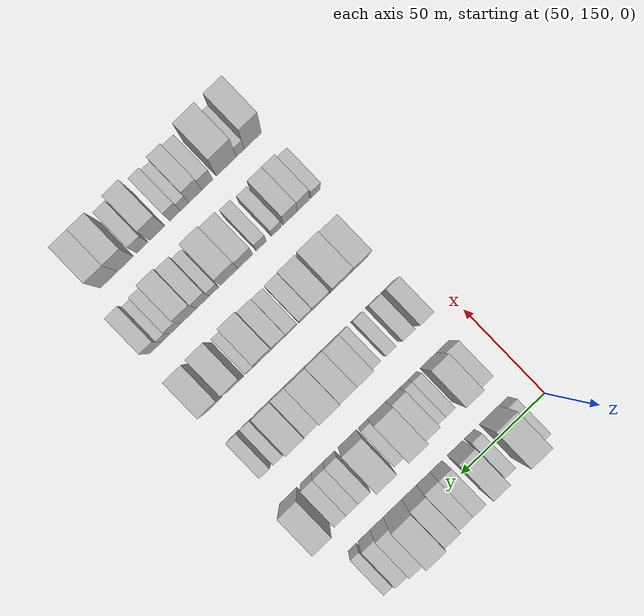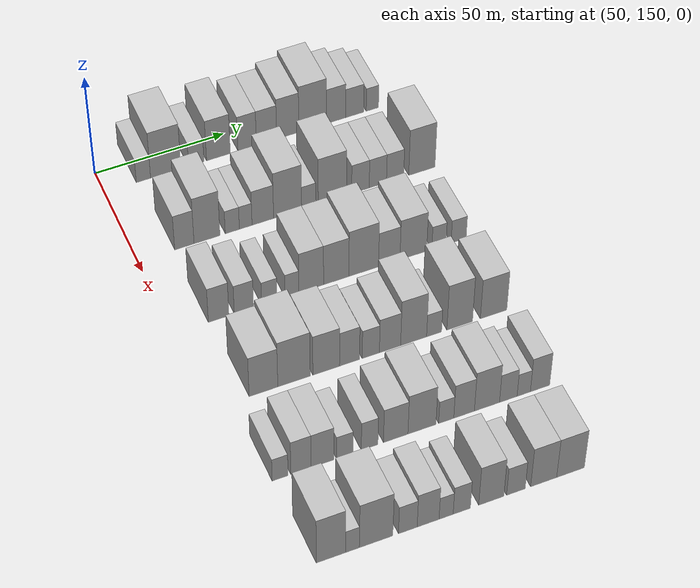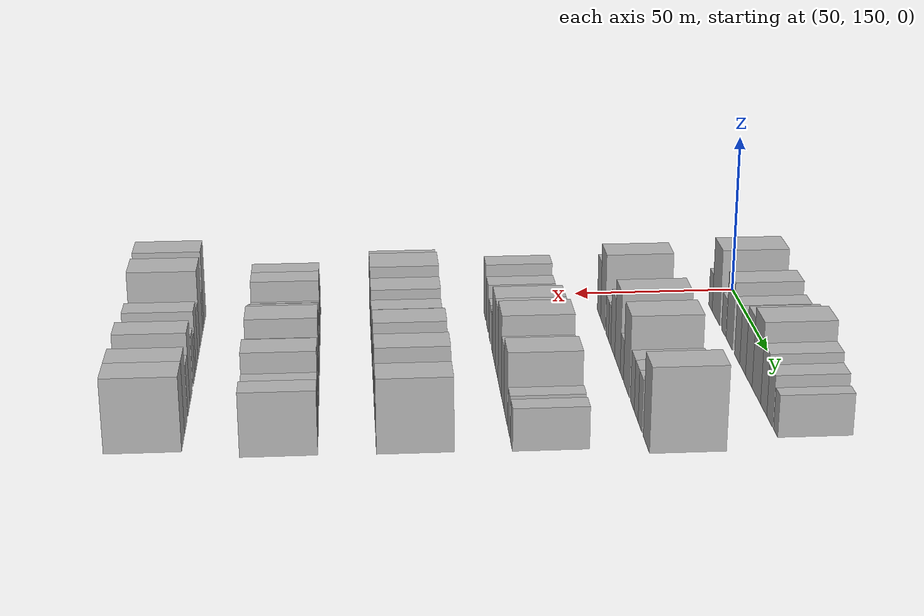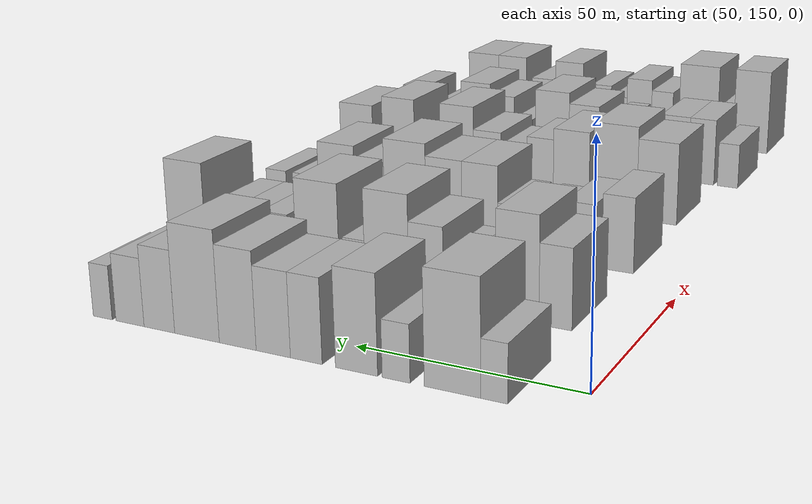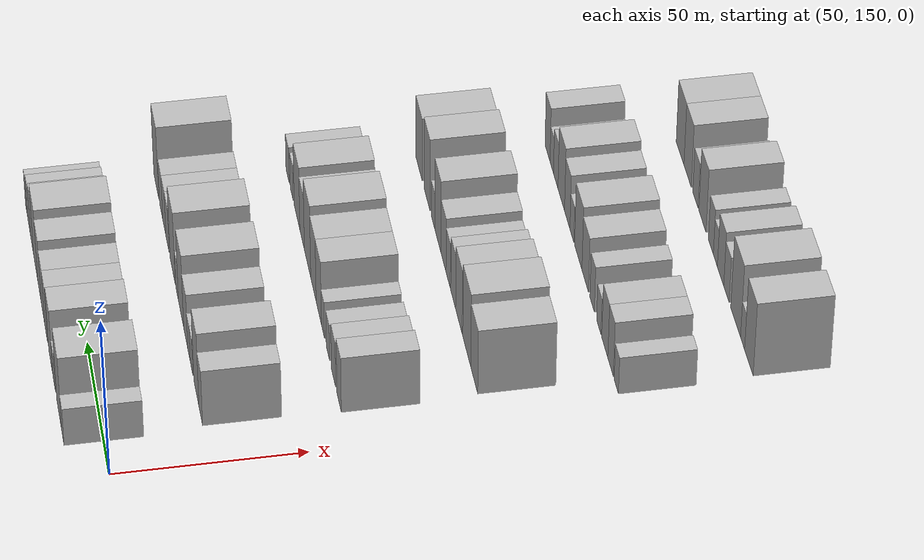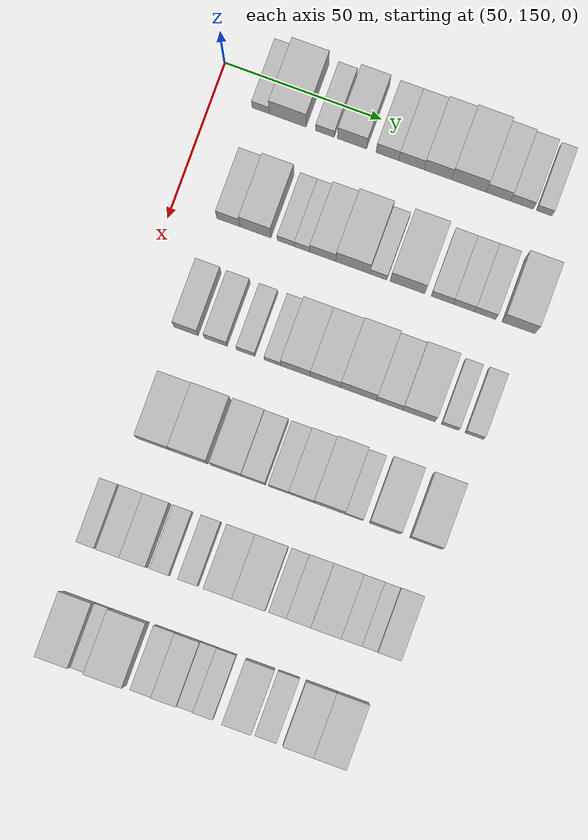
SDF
<sdf version="1.6">
 <world name="default">
  <model name="building_85">
   <static>1</static>
   <pose>50.0000 165.0596 0 0.000000 0.000000 0.000000</pose>
   <link name="link">
    <pose>0 0 6.00 0 0 0</pose>
    <collision name="collision"><geometry><box><size>20.0000 5.4968 12.0000</size></box></geometry></collision>
    <visual name="visual">
     <cast_shadows>0</cast_shadows>
     <geometry><box><size>20.0000 5.4968 12.0000</size></box></geometry>
     <material>
      <script>
       <uri>model://HANNAS_wall/materials/scripts</uri>
       <uri>model://HANNAS_wall/materials/textures</uri>
       <name>vrc/HANNAS_wall</name>
      </script>
     </material>
    </visual>
   </link>
  </model>
  <model name="building_86">
   <static>1</static>
   <pose>50.0000 173.6680 0 0.000000 0.000000 0.000000</pose>
   <link name="link">
    <pose>0 0 12.00 0 0 0</pose>
    <collision name="collision"><geometry><box><size>20.0000 11.7200 24.0000</size></box></geometry></collision>
    <visual name="visual">
     <cast_shadows>0</cast_shadows>
     <geometry><box><size>20.0000 11.7200 24.0000</size></box></geometry>
     <material>
      <script>
       <uri>model://HANNAS_wall/materials/scripts</uri>
       <uri>model://HANNAS_wall/materials/textures</uri>
       <name>vrc/HANNAS_wall</name>
      </script>
     </material>
    </visual>
   </link>
  </model>
  <model name="building_87">
   <static>1</static>
   <pose>50.0000 185.5181 0 0.000000 0.000000 0.000000</pose>
   <link name="link">
    <pose>0 0 6.00 0 0 0</pose>
    <collision name="collision"><geometry><box><size>20.0000 5.9802 12.0000</size></box></geometry></collision>
    <visual name="visual">
     <cast_shadows>0</cast_shadows>
     <geometry><box><size>20.0000 5.9802 12.0000</size></box></geometry>
     <material>
      <script>
       <uri>model://HANNAS_wall/materials/scripts</uri>
       <uri>model://HANNAS_wall/materials/textures</uri>
       <name>vrc/HANNAS_wall</name>
      </script>
     </material>
    </visual>
   </link>
  </model>
  <model name="building_88">
   <static>1</static>
   <pose>50.0000 194.1601 0 0.000000 0.000000 0.000000</pose>
   <link name="link">
    <pose>0 0 10.50 0 0 0</pose>
    <collision name="collision"><geometry><box><size>20.0000 9.3038 21.0000</size></box></geometry></collision>
    <visual name="visual">
     <cast_shadows>0</cast_shadows>
     <geometry><box><size>20.0000 9.3038 21.0000</size></box></geometry>
     <material>
      <script>
       <uri>model://HANNAS_wall/materials/scripts</uri>
       <uri>model://HANNAS_wall/materials/textures</uri>
       <name>vrc/HANNAS_wall</name>
      </script>
     </material>
    </visual>
   </link>
  </model>
  <model name="building_89">
   <static>1</static>
   <pose>50.0000 205.4317 0 0.000000 0.000000 0.000000</pose>
   <link name="link">
    <pose>0 0 9.00 0 0 0</pose>
    <collision name="collision"><geometry><box><size>20.0000 7.2393 18.0000</size></box></geometry></collision>
    <visual name="visual">
     <cast_shadows>0</cast_shadows>
     <geometry><box><size>20.0000 7.2393 18.0000</size></box></geometry>
     <material>
      <script>
       <uri>model://HANNAS_wall/materials/scripts</uri>
       <uri>model://HANNAS_wall/materials/textures</uri>
       <name>vrc/HANNAS_wall</name>
      </script>
     </material>
    </visual>
   </link>
  </model>
  <model name="building_90">
   <static>1</static>
   <pose>50.0000 213.0510 0 0.000000 0.000000 0.000000</pose>
   <link name="link">
    <pose>0 0 9.00 0 0 0</pose>
    <collision name="collision"><geometry><box><size>20.0000 7.9992 18.0000</size></box></geometry></collision>
    <visual name="visual">
     <cast_shadows>0</cast_shadows>
     <geometry><box><size>20.0000 7.9992 18.0000</size></box></geometry>
     <material>
      <script>
       <uri>model://HANNAS_wall/materials/scripts</uri>
       <uri>model://HANNAS_wall/materials/textures</uri>
       <name>vrc/HANNAS_wall</name>
      </script>
     </material>
    </visual>
   </link>
  </model>
  <model name="building_91">
   <static>1</static>
   <pose>50.0000 221.4520 0 0.000000 0.000000 0.000000</pose>
   <link name="link">
    <pose>0 0 10.50 0 0 0</pose>
    <collision name="collision"><geometry><box><size>20.0000 8.8029 21.0000</size></box></geometry></collision>
    <visual name="visual">
     <cast_shadows>0</cast_shadows>
     <geometry><box><size>20.0000 8.8029 21.0000</size></box></geometry>
     <material>
      <script>
       <uri>model://HANNAS_wall/materials/scripts</uri>
       <uri>model://HANNAS_wall/materials/textures</uri>
       <name>vrc/HANNAS_wall</name>
      </script>
     </material>
    </visual>
   </link>
  </model>
  <model name="building_92">
   <static>1</static>
   <pose>50.0000 231.3455 0 0.000000 0.000000 0.000000</pose>
   <link name="link">
    <pose>0 0 12.00 0 0 0</pose>
    <collision name="collision"><geometry><box><size>20.0000 10.9840 24.0000</size></box></geometry></collision>
    <visual name="visual">
     <cast_shadows>0</cast_shadows>
     <geometry><box><size>20.0000 10.9840 24.0000</size></box></geometry>
     <material>
      <script>
       <uri>model://HANNAS_wall/materials/scripts</uri>
       <uri>model://HANNAS_wall/materials/textures</uri>
       <name>vrc/HANNAS_wall</name>
      </script>
     </material>
    </visual>
   </link>
  </model>
  <model name="building_93">
   <static>1</static>
   <pose>50.0000 240.7117 0 0.000000 0.000000 0.000000</pose>
   <link name="link">
    <pose>0 0 9.00 0 0 0</pose>
    <collision name="collision"><geometry><box><size>20.0000 7.7483 18.0000</size></box></geometry></collision>
    <visual name="visual">
     <cast_shadows>0</cast_shadows>
     <geometry><box><size>20.0000 7.7483 18.0000</size></box></geometry>
     <material>
      <script>
       <uri>model://HANNAS_wall/materials/scripts</uri>
       <uri>model://HANNAS_wall/materials/textures</uri>
       <name>vrc/HANNAS_wall</name>
      </script>
     </material>
    </visual>
   </link>
  </model>
  <model name="building_94">
   <static>1</static>
   <pose>50.0000 248.2094 0 0.000000 0.000000 0.000000</pose>
   <link name="link">
    <pose>0 0 7.50 0 0 0</pose>
    <collision name="collision"><geometry><box><size>20.0000 7.2471 15.0000</size></box></geometry></collision>
    <visual name="visual">
     <cast_shadows>0</cast_shadows>
     <geometry><box><size>20.0000 7.2471 15.0000</size></box></geometry>
     <material>
      <script>
       <uri>model://HANNAS_wall/materials/scripts</uri>
       <uri>model://HANNAS_wall/materials/textures</uri>
       <name>vrc/HANNAS_wall</name>
      </script>
     </material>
    </visual>
   </link>
  </model>
  <model name="building_95">
   <static>1</static>
   <pose>50.0000 255.3101 0 0.000000 0.000000 0.000000</pose>
   <link name="link">
    <pose>0 0 6.00 0 0 0</pose>
    <collision name="collision"><geometry><box><size>20.0000 4.9544 12.0000</size></box></geometry></collision>
    <visual name="visual">
     <cast_shadows>0</cast_shadows>
     <geometry><box><size>20.0000 4.9544 12.0000</size></box></geometry>
     <material>
      <script>
       <uri>model://HANNAS_wall/materials/scripts</uri>
       <uri>model://HANNAS_wall/materials/textures</uri>
       <name>vrc/HANNAS_wall</name>
      </script>
     </material>
    </visual>
   </link>
  </model>
  <model name="building_211">
   <static>1</static>
   <pose>85.0000 167.6318 0 0.000000 0.000000 0.000000</pose>
   <link name="link">
    <pose>0 0 9.00 0 0 0</pose>
    <collision name="collision"><geometry><box><size>20.0000 7.3323 18.0000</size></box></geometry></collision>
    <visual name="visual">
     <cast_shadows>0</cast_shadows>
     <geometry><box><size>20.0000 7.3323 18.0000</size></box></geometry>
     <material>
      <script>
       <uri>model://HANNAS_wall/materials/scripts</uri>
       <uri>model://HANNAS_wall/materials/textures</uri>
       <name>vrc/HANNAS_wall</name>
      </script>
     </material>
    </visual>
   </link>
  </model>
  <model name="building_212">
   <static>1</static>
   <pose>85.0000 176.2256 0 0.000000 0.000000 0.000000</pose>
   <link name="link">
    <pose>0 0 12.00 0 0 0</pose>
    <collision name="collision"><geometry><box><size>20.0000 9.8552 24.0000</size></box></geometry></collision>
    <visual name="visual">
     <cast_shadows>0</cast_shadows>
     <geometry><box><size>20.0000 9.8552 24.0000</size></box></geometry>
     <material>
      <script>
       <uri>model://HANNAS_wall/materials/scripts</uri>
       <uri>model://HANNAS_wall/materials/textures</uri>
       <name>vrc/HANNAS_wall</name>
      </script>
     </material>
    </visual>
   </link>
  </model>
  <model name="building_213">
   <static>1</static>
   <pose>85.0000 185.8575 0 0.000000 0.000000 0.000000</pose>
   <link name="link">
    <pose>0 0 6.00 0 0 0</pose>
    <collision name="collision"><geometry><box><size>20.0000 5.4086 12.0000</size></box></geometry></collision>
    <visual name="visual">
     <cast_shadows>0</cast_shadows>
     <geometry><box><size>20.0000 5.4086 12.0000</size></box></geometry>
     <material>
      <script>
       <uri>model://HANNAS_wall/materials/scripts</uri>
       <uri>model://HANNAS_wall/materials/textures</uri>
       <name>vrc/HANNAS_wall</name>
      </script>
     </material>
    </visual>
   </link>
  </model>
  <model name="building_214">
   <static>1</static>
   <pose>85.0000 190.9847 0 0.000000 0.000000 0.000000</pose>
   <link name="link">
    <pose>0 0 6.00 0 0 0</pose>
    <collision name="collision"><geometry><box><size>20.0000 4.8459 12.0000</size></box></geometry></collision>
    <visual name="visual">
     <cast_shadows>0</cast_shadows>
     <geometry><box><size>20.0000 4.8459 12.0000</size></box></geometry>
     <material>
      <script>
       <uri>model://HANNAS_wall/materials/scripts</uri>
       <uri>model://HANNAS_wall/materials/textures</uri>
       <name>vrc/HANNAS_wall</name>
      </script>
     </material>
    </visual>
   </link>
  </model>
  <model name="building_215">
   <static>1</static>
   <pose>85.0000 197.5576 0 0.000000 0.000000 0.000000</pose>
   <link name="link">
    <pose>0 0 9.00 0 0 0</pose>
    <collision name="collision"><geometry><box><size>20.0000 8.3000 18.0000</size></box></geometry></collision>
    <visual name="visual">
     <cast_shadows>0</cast_shadows>
     <geometry><box><size>20.0000 8.3000 18.0000</size></box></geometry>
     <material>
      <script>
       <uri>model://HANNAS_wall/materials/scripts</uri>
       <uri>model://HANNAS_wall/materials/textures</uri>
       <name>vrc/HANNAS_wall</name>
      </script>
     </material>
    </visual>
   </link>
  </model>
  <model name="building_216">
   <static>1</static>
   <pose>85.0000 207.1209 0 0.000000 0.000000 0.000000</pose>
   <link name="link">
    <pose>0 0 12.00 0 0 0</pose>
    <collision name="collision"><geometry><box><size>20.0000 10.8265 24.0000</size></box></geometry></collision>
    <visual name="visual">
     <cast_shadows>0</cast_shadows>
     <geometry><box><size>20.0000 10.8265 24.0000</size></box></geometry>
     <material>
      <script>
       <uri>model://HANNAS_wall/materials/scripts</uri>
       <uri>model://HANNAS_wall/materials/textures</uri>
       <name>vrc/HANNAS_wall</name>
      </script>
     </material>
    </visual>
   </link>
  </model>
  <model name="building_217">
   <static>1</static>
   <pose>85.0000 215.2522 0 0.000000 0.000000 0.000000</pose>
   <link name="link">
    <pose>0 0 6.00 0 0 0</pose>
    <collision name="collision"><geometry><box><size>20.0000 5.4363 12.0000</size></box></geometry></collision>
    <visual name="visual">
     <cast_shadows>0</cast_shadows>
     <geometry><box><size>20.0000 5.4363 12.0000</size></box></geometry>
     <material>
      <script>
       <uri>model://HANNAS_wall/materials/scripts</uri>
       <uri>model://HANNAS_wall/materials/textures</uri>
       <name>vrc/HANNAS_wall</name>
      </script>
     </material>
    </visual>
   </link>
  </model>
  <model name="building_218">
   <static>1</static>
   <pose>85.0000 224.4959 0 0.000000 0.000000 0.000000</pose>
   <link name="link">
    <pose>0 0 12.00 0 0 0</pose>
    <collision name="collision"><geometry><box><size>20.0000 11.0511 24.0000</size></box></geometry></collision>
    <visual name="visual">
     <cast_shadows>0</cast_shadows>
     <geometry><box><size>20.0000 11.0511 24.0000</size></box></geometry>
     <material>
      <script>
       <uri>model://HANNAS_wall/materials/scripts</uri>
       <uri>model://HANNAS_wall/materials/textures</uri>
       <name>vrc/HANNAS_wall</name>
      </script>
     </material>
    </visual>
   </link>
  </model>
  <model name="building_219">
   <static>1</static>
   <pose>85.0000 235.4672 0 0.000000 0.000000 0.000000</pose>
   <link name="link">
    <pose>0 0 7.50 0 0 0</pose>
    <collision name="collision"><geometry><box><size>20.0000 6.8915 15.0000</size></box></geometry></collision>
    <visual name="visual">
     <cast_shadows>0</cast_shadows>
     <geometry><box><size>20.0000 6.8915 15.0000</size></box></geometry>
     <material>
      <script>
       <uri>model://HANNAS_wall/materials/scripts</uri>
       <uri>model://HANNAS_wall/materials/textures</uri>
       <name>vrc/HANNAS_wall</name>
      </script>
     </material>
    </visual>
   </link>
  </model>
  <model name="building_220">
   <static>1</static>
   <pose>85.0000 242.3127 0 0.000000 0.000000 0.000000</pose>
   <link name="link">
    <pose>0 0 7.50 0 0 0</pose>
    <collision name="collision"><geometry><box><size>20.0000 6.7995 15.0000</size></box></geometry></collision>
    <visual name="visual">
     <cast_shadows>0</cast_shadows>
     <geometry><box><size>20.0000 6.7995 15.0000</size></box></geometry>
     <material>
      <script>
       <uri>model://HANNAS_wall/materials/scripts</uri>
       <uri>model://HANNAS_wall/materials/textures</uri>
       <name>vrc/HANNAS_wall</name>
      </script>
     </material>
    </visual>
   </link>
  </model>
  <model name="building_221">
   <static>1</static>
   <pose>85.0000 249.1140 0 0.000000 0.000000 0.000000</pose>
   <link name="link">
    <pose>0 0 7.50 0 0 0</pose>
    <collision name="collision"><geometry><box><size>20.0000 6.8031 15.0000</size></box></geometry></collision>
    <visual name="visual">
     <cast_shadows>0</cast_shadows>
     <geometry><box><size>20.0000 6.8031 15.0000</size></box></geometry>
     <material>
      <script>
       <uri>model://HANNAS_wall/materials/scripts</uri>
       <uri>model://HANNAS_wall/materials/textures</uri>
       <name>vrc/HANNAS_wall</name>
      </script>
     </material>
    </visual>
   </link>
  </model>
  <model name="building_222">
   <static>1</static>
   <pose>85.0000 259.7297 0 0.000000 0.000000 0.000000</pose>
   <link name="link">
    <pose>0 0 12.00 0 0 0</pose>
    <collision name="collision"><geometry><box><size>20.0000 10.4284 24.0000</size></box></geometry></collision>
    <visual name="visual">
     <cast_shadows>0</cast_shadows>
     <geometry><box><size>20.0000 10.4284 24.0000</size></box></geometry>
     <material>
      <script>
       <uri>model://HANNAS_wall/materials/scripts</uri>
       <uri>model://HANNAS_wall/materials/textures</uri>
       <name>vrc/HANNAS_wall</name>
      </script>
     </material>
    </visual>
   </link>
  </model>
  <model name="building_331">
   <static>1</static>
   <pose>120.0000 167.0489 0 0.000000 0.000000 0.000000</pose>
   <link name="link">
    <pose>0 0 9.00 0 0 0</pose>
    <collision name="collision"><geometry><box><size>20.0000 7.6300 18.0000</size></box></geometry></collision>
    <visual name="visual">
     <cast_shadows>0</cast_shadows>
     <geometry><box><size>20.0000 7.6300 18.0000</size></box></geometry>
     <material>
      <script>
       <uri>model://HANNAS_wall/materials/scripts</uri>
       <uri>model://HANNAS_wall/materials/textures</uri>
       <name>vrc/HANNAS_wall</name>
      </script>
     </material>
    </visual>
   </link>
  </model>
  <model name="building_332">
   <static>1</static>
   <pose>120.0000 176.4582 0 0.000000 0.000000 0.000000</pose>
   <link name="link">
    <pose>0 0 7.50 0 0 0</pose>
    <collision name="collision"><geometry><box><size>20.0000 7.1886 15.0000</size></box></geometry></collision>
    <visual name="visual">
     <cast_shadows>0</cast_shadows>
     <geometry><box><size>20.0000 7.1886 15.0000</size></box></geometry>
     <material>
      <script>
       <uri>model://HANNAS_wall/materials/scripts</uri>
       <uri>model://HANNAS_wall/materials/textures</uri>
       <name>vrc/HANNAS_wall</name>
      </script>
     </material>
    </visual>
   </link>
  </model>
  <model name="building_333">
   <static>1</static>
   <pose>120.0000 185.9573 0 0.000000 0.000000 0.000000</pose>
   <link name="link">
    <pose>0 0 6.00 0 0 0</pose>
    <collision name="collision"><geometry><box><size>20.0000 5.8095 12.0000</size></box></geometry></collision>
    <visual name="visual">
     <cast_shadows>0</cast_shadows>
     <geometry><box><size>20.0000 5.8095 12.0000</size></box></geometry>
     <material>
      <script>
       <uri>model://HANNAS_wall/materials/scripts</uri>
       <uri>model://HANNAS_wall/materials/textures</uri>
       <name>vrc/HANNAS_wall</name>
      </script>
     </material>
    </visual>
   </link>
  </model>
  <model name="building_334">
   <static>1</static>
   <pose>120.0000 194.4682 0 0.000000 0.000000 0.000000</pose>
   <link name="link">
    <pose>0 0 6.00 0 0 0</pose>
    <collision name="collision"><geometry><box><size>20.0000 5.2124 12.0000</size></box></geometry></collision>
    <visual name="visual">
     <cast_shadows>0</cast_shadows>
     <geometry><box><size>20.0000 5.2124 12.0000</size></box></geometry>
     <material>
      <script>
       <uri>model://HANNAS_wall/materials/scripts</uri>
       <uri>model://HANNAS_wall/materials/textures</uri>
       <name>vrc/HANNAS_wall</name>
      </script>
     </material>
    </visual>
   </link>
  </model>
  <model name="building_335">
   <static>1</static>
   <pose>120.0000 201.7313 0 0.000000 0.000000 0.000000</pose>
   <link name="link">
    <pose>0 0 10.50 0 0 0</pose>
    <collision name="collision"><geometry><box><size>20.0000 9.3136 21.0000</size></box></geometry></collision>
    <visual name="visual">
     <cast_shadows>0</cast_shadows>
     <geometry><box><size>20.0000 9.3136 21.0000</size></box></geometry>
     <material>
      <script>
       <uri>model://HANNAS_wall/materials/scripts</uri>
       <uri>model://HANNAS_wall/materials/textures</uri>
       <name>vrc/HANNAS_wall</name>
      </script>
     </material>
    </visual>
   </link>
  </model>
  <model name="building_336">
   <static>1</static>
   <pose>120.0000 211.1933 0 0.000000 0.000000 0.000000</pose>
   <link name="link">
    <pose>0 0 10.50 0 0 0</pose>
    <collision name="collision"><geometry><box><size>20.0000 9.6106 21.0000</size></box></geometry></collision>
    <visual name="visual">
     <cast_shadows>0</cast_shadows>
     <geometry><box><size>20.0000 9.6106 21.0000</size></box></geometry>
     <material>
      <script>
       <uri>model://HANNAS_wall/materials/scripts</uri>
       <uri>model://HANNAS_wall/materials/textures</uri>
       <name>vrc/HANNAS_wall</name>
      </script>
     </material>
    </visual>
   </link>
  </model>
  <model name="building_337">
   <static>1</static>
   <pose>120.0000 221.6790 0 0.000000 0.000000 0.000000</pose>
   <link name="link">
    <pose>0 0 12.00 0 0 0</pose>
    <collision name="collision"><geometry><box><size>20.0000 11.3607 24.0000</size></box></geometry></collision>
    <visual name="visual">
     <cast_shadows>0</cast_shadows>
     <geometry><box><size>20.0000 11.3607 24.0000</size></box></geometry>
     <material>
      <script>
       <uri>model://HANNAS_wall/materials/scripts</uri>
       <uri>model://HANNAS_wall/materials/textures</uri>
       <name>vrc/HANNAS_wall</name>
      </script>
     </material>
    </visual>
   </link>
  </model>
  <model name="building_338">
   <static>1</static>
   <pose>120.0000 231.4767 0 0.000000 0.000000 0.000000</pose>
   <link name="link">
    <pose>0 0 9.00 0 0 0</pose>
    <collision name="collision"><geometry><box><size>20.0000 8.2347 18.0000</size></box></geometry></collision>
    <visual name="visual">
     <cast_shadows>0</cast_shadows>
     <geometry><box><size>20.0000 8.2347 18.0000</size></box></geometry>
     <material>
      <script>
       <uri>model://HANNAS_wall/materials/scripts</uri>
       <uri>model://HANNAS_wall/materials/textures</uri>
       <name>vrc/HANNAS_wall</name>
      </script>
     </material>
    </visual>
   </link>
  </model>
  <model name="building_339">
   <static>1</static>
   <pose>120.0000 240.7613 0 0.000000 0.000000 0.000000</pose>
   <link name="link">
    <pose>0 0 10.50 0 0 0</pose>
    <collision name="collision"><geometry><box><size>20.0000 10.3345 21.0000</size></box></geometry></collision>
    <visual name="visual">
     <cast_shadows>0</cast_shadows>
     <geometry><box><size>20.0000 10.3345 21.0000</size></box></geometry>
     <material>
      <script>
       <uri>model://HANNAS_wall/materials/scripts</uri>
       <uri>model://HANNAS_wall/materials/textures</uri>
       <name>vrc/HANNAS_wall</name>
      </script>
     </material>
    </visual>
   </link>
  </model>
  <model name="building_340">
   <static>1</static>
   <pose>120.0000 250.6741 0 0.000000 0.000000 0.000000</pose>
   <link name="link">
    <pose>0 0 6.00 0 0 0</pose>
    <collision name="collision"><geometry><box><size>20.0000 5.4910 12.0000</size></box></geometry></collision>
    <visual name="visual">
     <cast_shadows>0</cast_shadows>
     <geometry><box><size>20.0000 5.4910 12.0000</size></box></geometry>
     <material>
      <script>
       <uri>model://HANNAS_wall/materials/scripts</uri>
       <uri>model://HANNAS_wall/materials/textures</uri>
       <name>vrc/HANNAS_wall</name>
      </script>
     </material>
    </visual>
   </link>
  </model>
  <model name="building_341">
   <static>1</static>
   <pose>120.0000 258.3558 0 0.000000 0.000000 0.000000</pose>
   <link name="link">
    <pose>0 0 6.00 0 0 0</pose>
    <collision name="collision"><geometry><box><size>20.0000 5.8724 12.0000</size></box></geometry></collision>
    <visual name="visual">
     <cast_shadows>0</cast_shadows>
     <geometry><box><size>20.0000 5.8724 12.0000</size></box></geometry>
     <material>
      <script>
       <uri>model://HANNAS_wall/materials/scripts</uri>
       <uri>model://HANNAS_wall/materials/textures</uri>
       <name>vrc/HANNAS_wall</name>
      </script>
     </material>
    </visual>
   </link>
  </model>
  <model name="building_460">
   <static>1</static>
   <pose>155.0000 169.7131 0 0.000000 0.000000 0.000000</pose>
   <link name="link">
    <pose>0 0 10.50 0 0 0</pose>
    <collision name="collision"><geometry><box><size>20.0000 10.4623 21.0000</size></box></geometry></collision>
    <visual name="visual">
     <cast_shadows>0</cast_shadows>
     <geometry><box><size>20.0000 10.4623 21.0000</size></box></geometry>
     <material>
      <script>
       <uri>model://HANNAS_wall/materials/scripts</uri>
       <uri>model://HANNAS_wall/materials/textures</uri>
       <name>vrc/HANNAS_wall</name>
      </script>
     </material>
    </visual>
   </link>
  </model>
  <model name="building_461">
   <static>1</static>
   <pose>155.0000 180.8750 0 0.000000 0.000000 0.000000</pose>
   <link name="link">
    <pose>0 0 12.00 0 0 0</pose>
    <collision name="collision"><geometry><box><size>20.0000 11.8615 24.0000</size></box></geometry></collision>
    <visual name="visual">
     <cast_shadows>0</cast_shadows>
     <geometry><box><size>20.0000 11.8615 24.0000</size></box></geometry>
     <material>
      <script>
       <uri>model://HANNAS_wall/materials/scripts</uri>
       <uri>model://HANNAS_wall/materials/textures</uri>
       <name>vrc/HANNAS_wall</name>
      </script>
     </material>
    </visual>
   </link>
  </model>
  <model name="building_462">
   <static>1</static>
   <pose>155.0000 192.7234 0 0.000000 0.000000 0.000000</pose>
   <link name="link">
    <pose>0 0 10.50 0 0 0</pose>
    <collision name="collision"><geometry><box><size>20.0000 9.8354 21.0000</size></box></geometry></collision>
    <visual name="visual">
     <cast_shadows>0</cast_shadows>
     <geometry><box><size>20.0000 9.8354 21.0000</size></box></geometry>
     <material>
      <script>
       <uri>model://HANNAS_wall/materials/scripts</uri>
       <uri>model://HANNAS_wall/materials/textures</uri>
       <name>vrc/HANNAS_wall</name>
      </script>
     </material>
    </visual>
   </link>
  </model>
  <model name="building_463">
   <static>1</static>
   <pose>155.0000 201.3423 0 0.000000 0.000000 0.000000</pose>
   <link name="link">
    <pose>0 0 9.00 0 0 0</pose>
    <collision name="collision"><geometry><box><size>20.0000 7.4023 18.0000</size></box></geometry></collision>
    <visual name="visual">
     <cast_shadows>0</cast_shadows>
     <geometry><box><size>20.0000 7.4023 18.0000</size></box></geometry>
     <material>
      <script>
       <uri>model://HANNAS_wall/materials/scripts</uri>
       <uri>model://HANNAS_wall/materials/textures</uri>
       <name>vrc/HANNAS_wall</name>
      </script>
     </material>
    </visual>
   </link>
  </model>
  <model name="building_464">
   <static>1</static>
   <pose>155.0000 209.2505 0 0.000000 0.000000 0.000000</pose>
   <link name="link">
    <pose>0 0 7.50 0 0 0</pose>
    <collision name="collision"><geometry><box><size>20.0000 6.4142 15.0000</size></box></geometry></collision>
    <visual name="visual">
     <cast_shadows>0</cast_shadows>
     <geometry><box><size>20.0000 6.4142 15.0000</size></box></geometry>
     <material>
      <script>
       <uri>model://HANNAS_wall/materials/scripts</uri>
       <uri>model://HANNAS_wall/materials/textures</uri>
       <name>vrc/HANNAS_wall</name>
      </script>
     </material>
    </visual>
   </link>
  </model>
  <model name="building_465">
   <static>1</static>
   <pose>155.0000 216.4245 0 0.000000 0.000000 0.000000</pose>
   <link name="link">
    <pose>0 0 9.00 0 0 0</pose>
    <collision name="collision"><geometry><box><size>20.0000 7.9338 18.0000</size></box></geometry></collision>
    <visual name="visual">
     <cast_shadows>0</cast_shadows>
     <geometry><box><size>20.0000 7.9338 18.0000</size></box></geometry>
     <material>
      <script>
       <uri>model://HANNAS_wall/materials/scripts</uri>
       <uri>model://HANNAS_wall/materials/textures</uri>
       <name>vrc/HANNAS_wall</name>
      </script>
     </material>
    </visual>
   </link>
  </model>
  <model name="building_466">
   <static>1</static>
   <pose>155.0000 225.2757 0 0.000000 0.000000 0.000000</pose>
   <link name="link">
    <pose>0 0 12.00 0 0 0</pose>
    <collision name="collision"><geometry><box><size>20.0000 9.7685 24.0000</size></box></geometry></collision>
    <visual name="visual">
     <cast_shadows>0</cast_shadows>
     <geometry><box><size>20.0000 9.7685 24.0000</size></box></geometry>
     <material>
      <script>
       <uri>model://HANNAS_wall/materials/scripts</uri>
       <uri>model://HANNAS_wall/materials/textures</uri>
       <name>vrc/HANNAS_wall</name>
      </script>
     </material>
    </visual>
   </link>
  </model>
  <model name="building_467">
   <static>1</static>
   <pose>155.0000 232.9932 0 0.000000 0.000000 0.000000</pose>
   <link name="link">
    <pose>0 0 6.00 0 0 0</pose>
    <collision name="collision"><geometry><box><size>20.0000 5.6665 12.0000</size></box></geometry></collision>
    <visual name="visual">
     <cast_shadows>0</cast_shadows>
     <geometry><box><size>20.0000 5.6665 12.0000</size></box></geometry>
     <material>
      <script>
       <uri>model://HANNAS_wall/materials/scripts</uri>
       <uri>model://HANNAS_wall/materials/textures</uri>
       <name>vrc/HANNAS_wall</name>
      </script>
     </material>
    </visual>
   </link>
  </model>
  <model name="building_468">
   <static>1</static>
   <pose>155.0000 242.6953 0 0.000000 0.000000 0.000000</pose>
   <link name="link">
    <pose>0 0 12.00 0 0 0</pose>
    <collision name="collision"><geometry><box><size>20.0000 9.7377 24.0000</size></box></geometry></collision>
    <visual name="visual">
     <cast_shadows>0</cast_shadows>
     <geometry><box><size>20.0000 9.7377 24.0000</size></box></geometry>
     <material>
      <script>
       <uri>model://HANNAS_wall/materials/scripts</uri>
       <uri>model://HANNAS_wall/materials/textures</uri>
       <name>vrc/HANNAS_wall</name>
      </script>
     </material>
    </visual>
   </link>
  </model>
  <model name="building_469">
   <static>1</static>
   <pose>155.0000 255.6131 0 0.000000 0.000000 0.000000</pose>
   <link name="link">
    <pose>0 0 10.50 0 0 0</pose>
    <collision name="collision"><geometry><box><size>20.0000 10.0978 21.0000</size></box></geometry></collision>
    <visual name="visual">
     <cast_shadows>0</cast_shadows>
     <geometry><box><size>20.0000 10.0978 21.0000</size></box></geometry>
     <material>
      <script>
       <uri>model://HANNAS_wall/materials/scripts</uri>
       <uri>model://HANNAS_wall/materials/textures</uri>
       <name>vrc/HANNAS_wall</name>
      </script>
     </material>
    </visual>
   </link>
  </model>
  <model name="building_584">
   <static>1</static>
   <pose>190.0000 161.5592 0 0.000000 0.000000 0.000000</pose>
   <link name="link">
    <pose>0 0 6.00 0 0 0</pose>
    <collision name="collision"><geometry><box><size>20.0000 5.6259 12.0000</size></box></geometry></collision>
    <visual name="visual">
     <cast_shadows>0</cast_shadows>
     <geometry><box><size>20.0000 5.6259 12.0000</size></box></geometry>
     <material>
      <script>
       <uri>model://HANNAS_wall/materials/scripts</uri>
       <uri>model://HANNAS_wall/materials/textures</uri>
       <name>vrc/HANNAS_wall</name>
      </script>
     </material>
    </visual>
   </link>
  </model>
  <model name="building_585">
   <static>1</static>
   <pose>190.0000 168.9773 0 0.000000 0.000000 0.000000</pose>
   <link name="link">
    <pose>0 0 9.00 0 0 0</pose>
    <collision name="collision"><geometry><box><size>20.0000 7.2103 18.0000</size></box></geometry></collision>
    <visual name="visual">
     <cast_shadows>0</cast_shadows>
     <geometry><box><size>20.0000 7.2103 18.0000</size></box></geometry>
     <material>
      <script>
       <uri>model://HANNAS_wall/materials/scripts</uri>
       <uri>model://HANNAS_wall/materials/textures</uri>
       <name>vrc/HANNAS_wall</name>
      </script>
     </material>
    </visual>
   </link>
  </model>
  <model name="building_586">
   <static>1</static>
   <pose>190.0000 176.6576 0 0.000000 0.000000 0.000000</pose>
   <link name="link">
    <pose>0 0 9.00 0 0 0</pose>
    <collision name="collision"><geometry><box><size>20.0000 8.1502 18.0000</size></box></geometry></collision>
    <visual name="visual">
     <cast_shadows>0</cast_shadows>
     <geometry><box><size>20.0000 8.1502 18.0000</size></box></geometry>
     <material>
      <script>
       <uri>model://HANNAS_wall/materials/scripts</uri>
       <uri>model://HANNAS_wall/materials/textures</uri>
       <name>vrc/HANNAS_wall</name>
      </script>
     </material>
    </visual>
   </link>
  </model>
  <model name="building_587">
   <static>1</static>
   <pose>190.0000 184.6909 0 0.000000 0.000000 0.000000</pose>
   <link name="link">
    <pose>0 0 6.00 0 0 0</pose>
    <collision name="collision"><geometry><box><size>20.0000 5.9163 12.0000</size></box></geometry></collision>
    <visual name="visual">
     <cast_shadows>0</cast_shadows>
     <geometry><box><size>20.0000 5.9163 12.0000</size></box></geometry>
     <material>
      <script>
       <uri>model://HANNAS_wall/materials/scripts</uri>
       <uri>model://HANNAS_wall/materials/textures</uri>
       <name>vrc/HANNAS_wall</name>
      </script>
     </material>
    </visual>
   </link>
  </model>
  <model name="building_588">
   <static>1</static>
   <pose>190.0000 193.6729 0 0.000000 0.000000 0.000000</pose>
   <link name="link">
    <pose>0 0 7.50 0 0 0</pose>
    <collision name="collision"><geometry><box><size>20.0000 6.0478 15.0000</size></box></geometry></collision>
    <visual name="visual">
     <cast_shadows>0</cast_shadows>
     <geometry><box><size>20.0000 6.0478 15.0000</size></box></geometry>
     <material>
      <script>
       <uri>model://HANNAS_wall/materials/scripts</uri>
       <uri>model://HANNAS_wall/materials/textures</uri>
       <name>vrc/HANNAS_wall</name>
      </script>
     </material>
    </visual>
   </link>
  </model>
  <model name="building_589">
   <static>1</static>
   <pose>190.0000 203.1556 0 0.000000 0.000000 0.000000</pose>
   <link name="link">
    <pose>0 0 9.00 0 0 0</pose>
    <collision name="collision"><geometry><box><size>20.0000 8.9176 18.0000</size></box></geometry></collision>
    <visual name="visual">
     <cast_shadows>0</cast_shadows>
     <geometry><box><size>20.0000 8.9176 18.0000</size></box></geometry>
     <material>
      <script>
       <uri>model://HANNAS_wall/materials/scripts</uri>
       <uri>model://HANNAS_wall/materials/textures</uri>
       <name>vrc/HANNAS_wall</name>
      </script>
     </material>
    </visual>
   </link>
  </model>
  <model name="building_590">
   <static>1</static>
   <pose>190.0000 212.7421 0 0.000000 0.000000 0.000000</pose>
   <link name="link">
    <pose>0 0 10.50 0 0 0</pose>
    <collision name="collision"><geometry><box><size>20.0000 10.2554 21.0000</size></box></geometry></collision>
    <visual name="visual">
     <cast_shadows>0</cast_shadows>
     <geometry><box><size>20.0000 10.2554 21.0000</size></box></geometry>
     <material>
      <script>
       <uri>model://HANNAS_wall/materials/scripts</uri>
       <uri>model://HANNAS_wall/materials/textures</uri>
       <name>vrc/HANNAS_wall</name>
      </script>
     </material>
    </visual>
   </link>
  </model>
  <model name="building_591">
   <static>1</static>
   <pose>190.0000 221.6520 0 0.000000 0.000000 0.000000</pose>
   <link name="link">
    <pose>0 0 6.00 0 0 0</pose>
    <collision name="collision"><geometry><box><size>20.0000 5.5643 12.0000</size></box></geometry></collision>
    <visual name="visual">
     <cast_shadows>0</cast_shadows>
     <geometry><box><size>20.0000 5.5643 12.0000</size></box></geometry>
     <material>
      <script>
       <uri>model://HANNAS_wall/materials/scripts</uri>
       <uri>model://HANNAS_wall/materials/textures</uri>
       <name>vrc/HANNAS_wall</name>
      </script>
     </material>
    </visual>
   </link>
  </model>
  <model name="building_592">
   <static>1</static>
   <pose>190.0000 228.2415 0 0.000000 0.000000 0.000000</pose>
   <link name="link">
    <pose>0 0 9.00 0 0 0</pose>
    <collision name="collision"><geometry><box><size>20.0000 7.6148 18.0000</size></box></geometry></collision>
    <visual name="visual">
     <cast_shadows>0</cast_shadows>
     <geometry><box><size>20.0000 7.6148 18.0000</size></box></geometry>
     <material>
      <script>
       <uri>model://HANNAS_wall/materials/scripts</uri>
       <uri>model://HANNAS_wall/materials/textures</uri>
       <name>vrc/HANNAS_wall</name>
      </script>
     </material>
    </visual>
   </link>
  </model>
  <model name="building_593">
   <static>1</static>
   <pose>190.0000 236.7115 0 0.000000 0.000000 0.000000</pose>
   <link name="link">
    <pose>0 0 10.50 0 0 0</pose>
    <collision name="collision"><geometry><box><size>20.0000 9.3251 21.0000</size></box></geometry></collision>
    <visual name="visual">
     <cast_shadows>0</cast_shadows>
     <geometry><box><size>20.0000 9.3251 21.0000</size></box></geometry>
     <material>
      <script>
       <uri>model://HANNAS_wall/materials/scripts</uri>
       <uri>model://HANNAS_wall/materials/textures</uri>
       <name>vrc/HANNAS_wall</name>
      </script>
     </material>
    </visual>
   </link>
  </model>
  <model name="building_594">
   <static>1</static>
   <pose>190.0000 244.6520 0 0.000000 0.000000 0.000000</pose>
   <link name="link">
    <pose>0 0 7.50 0 0 0</pose>
    <collision name="collision"><geometry><box><size>20.0000 6.5558 15.0000</size></box></geometry></collision>
    <visual name="visual">
     <cast_shadows>0</cast_shadows>
     <geometry><box><size>20.0000 6.5558 15.0000</size></box></geometry>
     <material>
      <script>
       <uri>model://HANNAS_wall/materials/scripts</uri>
       <uri>model://HANNAS_wall/materials/textures</uri>
       <name>vrc/HANNAS_wall</name>
      </script>
     </material>
    </visual>
   </link>
  </model>
  <model name="building_595">
   <static>1</static>
   <pose>190.0000 250.4212 0 0.000000 0.000000 0.000000</pose>
   <link name="link">
    <pose>0 0 6.00 0 0 0</pose>
    <collision name="collision"><geometry><box><size>20.0000 4.9827 12.0000</size></box></geometry></collision>
    <visual name="visual">
     <cast_shadows>0</cast_shadows>
     <geometry><box><size>20.0000 4.9827 12.0000</size></box></geometry>
     <material>
      <script>
       <uri>model://HANNAS_wall/materials/scripts</uri>
       <uri>model://HANNAS_wall/materials/textures</uri>
       <name>vrc/HANNAS_wall</name>
      </script>
     </material>
    </visual>
   </link>
  </model>
  <model name="building_596">
   <static>1</static>
   <pose>190.0000 256.5312 0 0.000000 0.000000 0.000000</pose>
   <link name="link">
    <pose>0 0 9.00 0 0 0</pose>
    <collision name="collision"><geometry><box><size>20.0000 7.2373 18.0000</size></box></geometry></collision>
    <visual name="visual">
     <cast_shadows>0</cast_shadows>
     <geometry><box><size>20.0000 7.2373 18.0000</size></box></geometry>
     <material>
      <script>
       <uri>model://HANNAS_wall/materials/scripts</uri>
       <uri>model://HANNAS_wall/materials/textures</uri>
       <name>vrc/HANNAS_wall</name>
      </script>
     </material>
    </visual>
   </link>
  </model>
  <model name="building_716">
   <static>1</static>
   <pose>225.0000 164.9753 0 0.000000 0.000000 0.000000</pose>
   <link name="link">
    <pose>0 0 12.00 0 0 0</pose>
    <collision name="collision"><geometry><box><size>20.0000 10.1879 24.0000</size></box></geometry></collision>
    <visual name="visual">
     <cast_shadows>0</cast_shadows>
     <geometry><box><size>20.0000 10.1879 24.0000</size></box></geometry>
     <material>
      <script>
       <uri>model://HANNAS_wall/materials/scripts</uri>
       <uri>model://HANNAS_wall/materials/textures</uri>
       <name>vrc/HANNAS_wall</name>
      </script>
     </material>
    </visual>
   </link>
  </model>
  <model name="building_717">
   <static>1</static>
   <pose>225.0000 172.4966 0 0.000000 0.000000 0.000000</pose>
   <link name="link">
    <pose>0 0 6.00 0 0 0</pose>
    <collision name="collision"><geometry><box><size>20.0000 4.8547 12.0000</size></box></geometry></collision>
    <visual name="visual">
     <cast_shadows>0</cast_shadows>
     <geometry><box><size>20.0000 4.8547 12.0000</size></box></geometry>
     <material>
      <script>
       <uri>model://HANNAS_wall/materials/scripts</uri>
       <uri>model://HANNAS_wall/materials/textures</uri>
       <name>vrc/HANNAS_wall</name>
      </script>
     </material>
    </visual>
   </link>
  </model>
  <model name="building_718">
   <static>1</static>
   <pose>225.0000 180.8300 0 0.000000 0.000000 0.000000</pose>
   <link name="link">
    <pose>0 0 12.00 0 0 0</pose>
    <collision name="collision"><geometry><box><size>20.0000 11.8122 24.0000</size></box></geometry></collision>
    <visual name="visual">
     <cast_shadows>0</cast_shadows>
     <geometry><box><size>20.0000 11.8122 24.0000</size></box></geometry>
     <material>
      <script>
       <uri>model://HANNAS_wall/materials/scripts</uri>
       <uri>model://HANNAS_wall/materials/textures</uri>
       <name>vrc/HANNAS_wall</name>
      </script>
     </material>
    </visual>
   </link>
  </model>
  <model name="building_719">
   <static>1</static>
   <pose>225.0000 192.0438 0 0.000000 0.000000 0.000000</pose>
   <link name="link">
    <pose>0 0 7.50 0 0 0</pose>
    <collision name="collision"><geometry><box><size>20.0000 6.6154 15.0000</size></box></geometry></collision>
    <visual name="visual">
     <cast_shadows>0</cast_shadows>
     <geometry><box><size>20.0000 6.6154 15.0000</size></box></geometry>
     <material>
      <script>
       <uri>model://HANNAS_wall/materials/scripts</uri>
       <uri>model://HANNAS_wall/materials/textures</uri>
       <name>vrc/HANNAS_wall</name>
      </script>
     </material>
    </visual>
   </link>
  </model>
  <model name="building_720">
   <static>1</static>
   <pose>225.0000 199.2527 0 0.000000 0.000000 0.000000</pose>
   <link name="link">
    <pose>0 0 9.00 0 0 0</pose>
    <collision name="collision"><geometry><box><size>20.0000 7.8025 18.0000</size></box></geometry></collision>
    <visual name="visual">
     <cast_shadows>0</cast_shadows>
     <geometry><box><size>20.0000 7.8025 18.0000</size></box></geometry>
     <material>
      <script>
       <uri>model://HANNAS_wall/materials/scripts</uri>
       <uri>model://HANNAS_wall/materials/textures</uri>
       <name>vrc/HANNAS_wall</name>
      </script>
     </material>
    </visual>
   </link>
  </model>
  <model name="building_721">
   <static>1</static>
   <pose>225.0000 205.6753 0 0.000000 0.000000 0.000000</pose>
   <link name="link">
    <pose>0 0 6.00 0 0 0</pose>
    <collision name="collision"><geometry><box><size>20.0000 5.0428 12.0000</size></box></geometry></collision>
    <visual name="visual">
     <cast_shadows>0</cast_shadows>
     <geometry><box><size>20.0000 5.0428 12.0000</size></box></geometry>
     <material>
      <script>
       <uri>model://HANNAS_wall/materials/scripts</uri>
       <uri>model://HANNAS_wall/materials/textures</uri>
       <name>vrc/HANNAS_wall</name>
      </script>
     </material>
    </visual>
   </link>
  </model>
  <model name="building_722">
   <static>1</static>
   <pose>225.0000 211.2900 0 0.000000 0.000000 0.000000</pose>
   <link name="link">
    <pose>0 0 7.50 0 0 0</pose>
    <collision name="collision"><geometry><box><size>20.0000 6.1865 15.0000</size></box></geometry></collision>
    <visual name="visual">
     <cast_shadows>0</cast_shadows>
     <geometry><box><size>20.0000 6.1865 15.0000</size></box></geometry>
     <material>
      <script>
       <uri>model://HANNAS_wall/materials/scripts</uri>
       <uri>model://HANNAS_wall/materials/textures</uri>
       <name>vrc/HANNAS_wall</name>
      </script>
     </material>
    </visual>
   </link>
  </model>
  <model name="building_723">
   <static>1</static>
   <pose>225.0000 221.9152 0 0.000000 0.000000 0.000000</pose>
   <link name="link">
    <pose>0 0 10.50 0 0 0</pose>
    <collision name="collision"><geometry><box><size>20.0000 9.0640 21.0000</size></box></geometry></collision>
    <visual name="visual">
     <cast_shadows>0</cast_shadows>
     <geometry><box><size>20.0000 9.0640 21.0000</size></box></geometry>
     <material>
      <script>
       <uri>model://HANNAS_wall/materials/scripts</uri>
       <uri>model://HANNAS_wall/materials/textures</uri>
       <name>vrc/HANNAS_wall</name>
      </script>
     </material>
    </visual>
   </link>
  </model>
  <model name="building_724">
   <static>1</static>
   <pose>225.0000 230.8193 0 0.000000 0.000000 0.000000</pose>
   <link name="link">
    <pose>0 0 7.50 0 0 0</pose>
    <collision name="collision"><geometry><box><size>20.0000 6.7442 15.0000</size></box></geometry></collision>
    <visual name="visual">
     <cast_shadows>0</cast_shadows>
     <geometry><box><size>20.0000 6.7442 15.0000</size></box></geometry>
     <material>
      <script>
       <uri>model://HANNAS_wall/materials/scripts</uri>
       <uri>model://HANNAS_wall/materials/textures</uri>
       <name>vrc/HANNAS_wall</name>
      </script>
     </material>
    </visual>
   </link>
  </model>
  <model name="building_725">
   <static>1</static>
   <pose>225.0000 240.9364 0 0.000000 0.000000 0.000000</pose>
   <link name="link">
    <pose>0 0 10.50 0 0 0</pose>
    <collision name="collision"><geometry><box><size>20.0000 9.4901 21.0000</size></box></geometry></collision>
    <visual name="visual">
     <cast_shadows>0</cast_shadows>
     <geometry><box><size>20.0000 9.4901 21.0000</size></box></geometry>
     <material>
      <script>
       <uri>model://HANNAS_wall/materials/scripts</uri>
       <uri>model://HANNAS_wall/materials/textures</uri>
       <name>vrc/HANNAS_wall</name>
      </script>
     </material>
    </visual>
   </link>
  </model>
  <model name="building_726">
   <static>1</static>
   <pose>225.0000 250.7609 0 0.000000 0.000000 0.000000</pose>
   <link name="link">
    <pose>0 0 10.50 0 0 0</pose>
    <collision name="collision"><geometry><box><size>20.0000 10.1589 21.0000</size></box></geometry></collision>
    <visual name="visual">
     <cast_shadows>0</cast_shadows>
     <geometry><box><size>20.0000 10.1589 21.0000</size></box></geometry>
     <material>
      <script>
       <uri>model://HANNAS_wall/materials/scripts</uri>
       <uri>model://HANNAS_wall/materials/textures</uri>
       <name>vrc/HANNAS_wall</name>
      </script>
     </material>
    </visual>
   </link>
  </model>
 </world>
</sdf>
